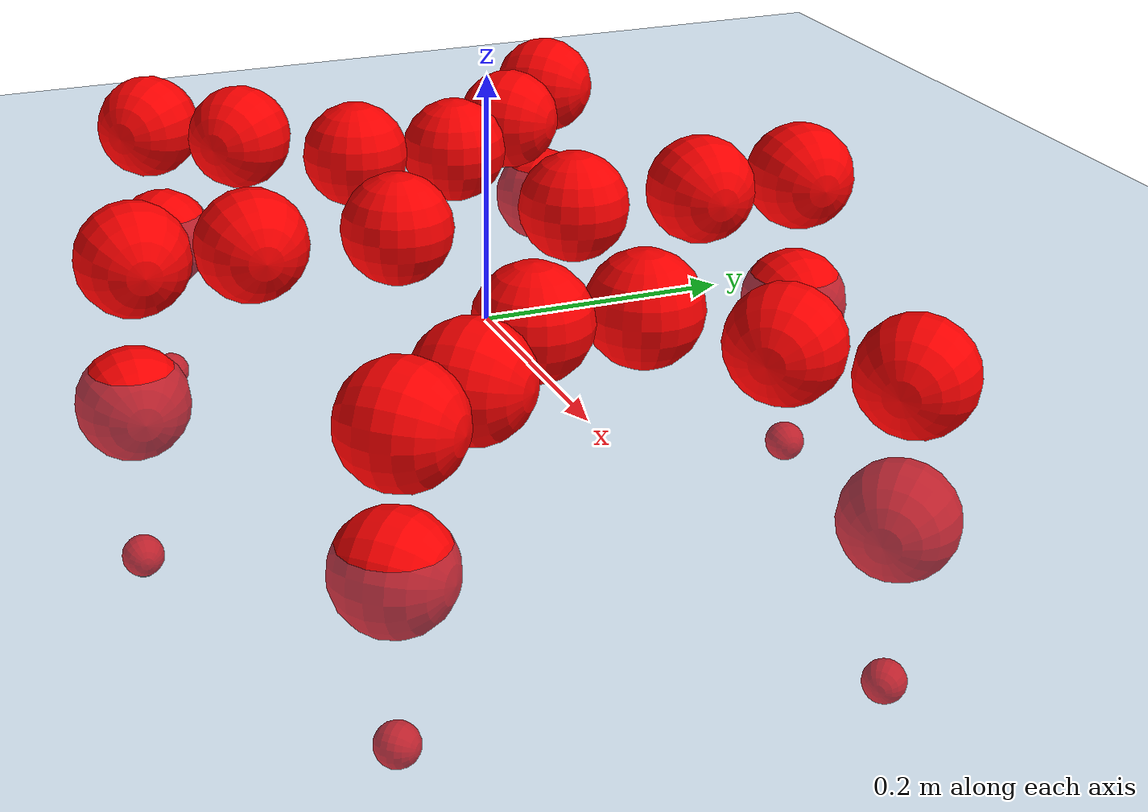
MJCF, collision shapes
<mujoco model="Golem">
  <compiler angle="radian" assetdir="assets" balanceinertia="true" inertiafromgeom="false"/>

  <option timestep="0.005" density="1.2" viscosity="2e-05"/>

  <size nkey="1"/>

  <visual>
    <quality shadowsize="8192"/>
    <map shadowclip="0.5"/>
  </visual>

  <default>
    <default class="/">
      <joint armature="0.01" damping="0.01" frictionloss="0.01"/>
      <geom contype="0" conaffinity="0" group="1" solref="-1000 -80"/>
      <site size="0.01 0.005 0.005" group="5"/>
      <general forcelimited="true" biastype="affine" gainprm="25" biasprm="0 -25 -0.5"/>
      <default class="visual">
        <geom type="mesh" group="2"/>
      </default>
      <default class="collision">
        <geom group="3"/>
      </default>
      <default class="foot">
        <geom size="0.01 0 0" condim="6" group="4" priority="1" solimp="0.015 1 0.01"/>
      </default>
      <default class="reward_collision_sphere">
        <geom group="5" rgba="1 0 0 1"/>
      </default>
    </default>
  </default>

  <asset>
    <texture type="skybox" colorspace="auto" name="//unnamed_texture_0" builtin="gradient" rgb1="0.95 0.95 0.95" rgb2="0.95 0.95 0.95" width="100" height="600"/>
    <texture type="2d" colorspace="auto" name="texplane" builtin="checker" rgb1="0.345 0.575 0.748" rgb2="0.345 0.575 0.748" markrgb="1 1 1" width="512" height="512"/>
    <material name="MatPlane" class="/" texture="texplane" texuniform="true" texrepeat="2 2" specular="0.9"/>
    <mesh name="body" class="/" file="body.stl" scale="0.001 0.001 0.001"/>
    <mesh name="coxa" class="/" file="coxa.stl" scale="0.001 0.001 0.001"/>
    <mesh name="femur" class="/" file="femur.stl" scale="0.001 0.001 0.001"/>
    <mesh name="tibia" class="/" file="tibia.stl" scale="0.001 0.001 0.001"/>
    <mesh name="tarsus" class="/" file="tarsus.stl" scale="0.001 0.001 0.001"/>
  </asset>

  <worldbody>
    <geom name="floor" class="/" size="100 100 0.125" type="plane" group="0" material="MatPlane"/>
    <light name="toplight_shadow" class="/" pos="0 0 5" dir="0.0990148 0.0990148 -0.990148" type="directional" ambient="0.04 0.04 0.04" diffuse="0.55 0.55 0.55" specular="0.12 0.12 0.12"/>
    <light name="toplight_fill" class="/" pos="0 0 5" dir="0.0990148 0.0990148 -0.990148" type="directional" castshadow="false" ambient="0.04 0.04 0.04" diffuse="0.3 0.3 0.3" specular="0.08 0.08 0.08"/>
    <body name="trunk" pos="-1.20237e-05 -0.00188458 0.00311488" quat="0.999997 -0.000601245 -9.67194e-05 -0.00242482">
      <inertial pos="-0.000373513 0.000483909 -0.00484301" quat="0.999998 0.00127969 -0.000454569 -0.00124536" mass="5.50194" diaginertia="0.0271548 0.00449654 0.030963"/>
      <joint name="//unnamed_joint_0" type="free"/>
      <geom name="//unnamed_geom_1" class="/" pos="0 0 0.0802544" quat="1 0 0 0" type="mesh" rgba="0.9 0.9 0.9 1" mesh="body"/>
      <site name="imu" class="/" pos="0.154008 -0.0268199 0.0844026" size="0.0110822"/>
      <camera name="track" class="/" pos="0 -1.69304 0" quat="0.707107 0.707107 0 0" mode="trackcom"/>
      <camera name="ego_camera" class="/" pos="0.15914 0 0.125398" quat="-0.5 -0.5 0.5 0.5"/>
      <body name="coxa_RR" pos="-0.216355 -0.0710015 0.0803499" quat="0.380808 -0.00327507 -0.00185915 -0.924646">
        <inertial pos="-0.00429427 0.000501573 0.00216625" quat="0.999992 -0.000273471 -0.00334201 0.00208247" mass="0.249242" diaginertia="0.0269002 0.00394905 0.0271692"/>
        <joint name="coxa_joint_RR" class="/" pos="0 0 0" axis="-0.000650347 -0.00452543 -0.99999" range="-3.15274 3.1269" armature="0.0124587" damping="0.00459978" frictionloss="0.0110068"/>
        <geom name="//unnamed_geom_2" class="/" type="mesh" rgba="0.2 0.2 0.2 1" mesh="coxa"/>
        <geom name="//unnamed_geom_3" class="reward_collision_sphere" size="0.0443287" pos="-0.0367247 0 0"/>
        <body name="femur_RR" pos="0.0756363 0.00122211 -0.000442556" quat="0.500325 -0.497105 0.500499 0.502058">
          <inertial pos="9.73145e-05 -0.00791939 -0.00184688" quat="0.999893 0.00645261 0.00234045 -0.0129047" mass="0.300489" diaginertia="0.0286492 0.00474155 0.0336293"/>
          <joint name="femur_joint_RR" class="/" pos="0 0 0" axis="-0.00669692 0.00521701 -0.999964" stiffness="0.00497408" range="-3.13199 3.1321" armature="0.00823615" damping="0.0142002" frictionloss="0.0109983"/>
          <geom name="//unnamed_geom_4" class="/" type="mesh" rgba="0.9 0.9 0.9 1" mesh="femur"/>
          <geom name="//unnamed_geom_5" class="reward_collision_sphere" size="0.0443287"/>
          <body name="tibia_RR" pos="0.00304711 -0.0926573 0.000490166" quat="-0.000247157 1 -3.67533e-05 -0.000620918">
            <inertial pos="-0.000272425 -0.0070345 0.00171803" quat="0.999999 3.4572e-05 -0.00151607 0.000710245" mass="0.279748" diaginertia="0.0281609 0.0044925 0.0316723"/>
            <joint name="tibia_joint_RR" class="/" pos="0 0 0" axis="-0.00631958 0.0323383 0.999457" stiffness="0.021206" range="-3.28064 3.16732" armature="0.0123849" damping="0.0334051" frictionloss="0.00619327"/>
            <geom name="//unnamed_geom_6" class="/" type="mesh" rgba="0.2 0.2 0.2 1" mesh="tibia"/>
            <geom name="//unnamed_geom_7" class="reward_collision_sphere" size="0.0443287"/>
            <body name="tarsus_RR" pos="0.106545 -0.00442854 0.0073129" quat="1 4.77712e-05 0.000775455 -0.000538772">
              <inertial pos="0.0725746 -0.00150383 -0.00376112" quat="0.499058 0.498035 0.506119 0.496735" mass="0.293982" diaginertia="0.0302916 0.00463286 0.0297381"/>
              <joint name="tarsus_joint_RR" class="/" pos="0 0 0" axis="-0.0152395 -0.00259187 0.999881" stiffness="0.000786729" range="-3.09789 3.09663" armature="0.0109841" damping="0" frictionloss="0.0122385"/>
              <geom name="//unnamed_geom_8" class="/" type="mesh" rgba="0.9 0.9 0.9 1" mesh="tarsus"/>
              <geom name="foot_1" class="foot" size="0.0133526" pos="0.137105 0 0" quat="0 -0.707107 0 0.707107"/>
              <geom name="//unnamed_geom_10" class="reward_collision_sphere" size="0.0443287"/>
              <geom name="//unnamed_geom_11" class="reward_collision_sphere" size="0.0166233" pos="0.131597 0 0"/>
              <site name="foot_1" class="foot" pos="0.137105 0 0" quat="0 -0.707107 0 0.707107" size="0.0110822"/>
            </body>
          </body>
        </body>
      </body>
      <body name="coxa_RM" pos="-0.00839499 -0.105492 0.0794119" quat="0.707196 -0.000446999 1.43824e-05 -0.707018">
        <inertial pos="0.00216127 -0.000443086 0.00551444" quat="0.99917 -0.0265685 0.00396062 -0.0306352" mass="0.248558" diaginertia="0.0252611 0.00354525 0.0262329"/>
        <joint name="coxa_joint_RM" class="/" pos="0 0 0" axis="-0.0261894 -0.0272337 -0.999286" stiffness="0.00702176" range="-3.13198 3.17495" armature="0.0105591" damping="0.0229224" frictionloss="0.00928504"/>
        <geom name="//unnamed_geom_12" class="/" type="mesh" rgba="0.2 0.2 0.2 1" mesh="coxa"/>
        <geom name="//unnamed_geom_13" class="reward_collision_sphere" size="0.0443287" pos="-0.0367247 0 0"/>
        <body name="femur_RM" pos="0.0794233 0.00170471 0.00216272" quat="0.499113 -0.500957 0.499807 0.500122">
          <inertial pos="0.000797205 -0.00402561 0.000725748" quat="0.999955 -0.00776797 0.00186239 -0.00517256" mass="0.265242" diaginertia="0.0293833 0.00425522 0.0315126"/>
          <joint name="femur_joint_RM" class="/" pos="0 0 0" axis="-0.00373308 0.00144126 -0.999992" stiffness="0.0242112" range="-3.24071 3.10836" armature="0.0089261" damping="0.00978515" frictionloss="0.00763884"/>
          <geom name="//unnamed_geom_14" class="/" type="mesh" rgba="0.9 0.9 0.9 1" mesh="femur"/>
          <geom name="//unnamed_geom_15" class="reward_collision_sphere" size="0.0443287"/>
          <body name="tibia_RM" pos="-0.00122684 -0.0905111 0.000432174" quat="-0.000898249 0.999999 0.000639282 0.000664677">
            <inertial pos="0.00236409 0.000138187 -0.00453219" quat="0.999966 -0.00501345 0.00209016 0.00614631" mass="0.249455" diaginertia="0.0270031 0.00434323 0.031714"/>
            <joint name="tibia_joint_RM" class="/" pos="0 0 0" axis="0.00400708 -0.0339865 0.999414" range="-3.15158 3.06776" armature="0.0150936" damping="0.0146082" frictionloss="0.00725569"/>
            <geom name="//unnamed_geom_16" class="/" type="mesh" rgba="0.2 0.2 0.2 1" mesh="tibia"/>
            <geom name="//unnamed_geom_17" class="reward_collision_sphere" size="0.0443287"/>
            <body name="tarsus_RM" pos="0.116611 0.00649879 0.00145056" quat="0.999998 -0.000173732 0.00032705 0.0018811">
              <inertial pos="0.0747149 -0.00122714 0.00122588" quat="0.498202 0.504699 0.500889 0.496169" mass="0.235186" diaginertia="0.0245162 0.00397714 0.0285083"/>
              <joint name="tarsus_joint_RM" class="/" pos="0 0 0" axis="0.0019101 0.000613889 0.999998" range="-3.14151 3.10779" armature="0.011699" damping="0" frictionloss="0.0118199"/>
              <geom name="//unnamed_geom_18" class="/" type="mesh" rgba="0.9 0.9 0.9 1" mesh="tarsus"/>
              <geom name="foot_2" class="foot" size="0.01221" pos="0.137105 0 0" quat="0 -0.707107 0 0.707107"/>
              <geom name="//unnamed_geom_20" class="reward_collision_sphere" size="0.0443287"/>
              <geom name="//unnamed_geom_21" class="reward_collision_sphere" size="0.0166233" pos="0.131597 0 0"/>
              <site name="foot_2" class="foot" pos="0.137105 0 0" quat="0 -0.707107 0 0.707107" size="0.0110822"/>
            </body>
          </body>
        </body>
      </body>
      <body name="coxa_RF" pos="0.217696 -0.0622739 0.0754275" quat="0.923812 0.000163433 -0.000151189 -0.382846">
        <inertial pos="0.00722879 0.00250652 0.00448242" quat="0.999899 -0.00404017 0.013134 0.00369009" mass="0.264974" diaginertia="0.0243057 0.00395269 0.0267921"/>
        <joint name="coxa_joint_RF" class="/" pos="0 0 0" axis="-0.00873796 0.00122726 -0.999961" stiffness="0.0258988" range="-3.0944 3.19772" armature="0.0101491" damping="0" frictionloss="0.00754666"/>
        <geom name="//unnamed_geom_22" class="/" type="mesh" rgba="0.2 0.2 0.2 1" mesh="coxa"/>
        <geom name="//unnamed_geom_23" class="reward_collision_sphere" size="0.0443287" pos="-0.0367247 0 0"/>
        <body name="femur_RF" pos="0.0659162 0.000600864 -0.00273808" quat="0.499328 -0.498387 0.501754 0.500525">
          <inertial pos="0.00203514 0.00120566 -0.00110943" quat="0.999951 0.00570251 -0.00330555 -0.00736807" mass="0.267062" diaginertia="0.0289183 0.0043832 0.0322182"/>
          <joint name="femur_joint_RF" class="/" pos="0 0 0" axis="-0.0002153 0.00102706 -0.999999" range="-3.16144 3.13063" armature="0.0118463" damping="0.0162375" frictionloss="0.0122537"/>
          <geom name="//unnamed_geom_24" class="/" type="mesh" rgba="0.9 0.9 0.9 1" mesh="femur"/>
          <geom name="//unnamed_geom_25" class="reward_collision_sphere" size="0.0443287"/>
          <body name="tibia_RF" pos="-0.00894259 -0.0936231 -0.00522821" quat="-7.2289e-06 1 -0.000101135 -3.44836e-05">
            <inertial pos="-0.000738262 0.00665063 0.00486727" quat="0.999516 -0.0217113 -0.0114028 0.0191538" mass="0.298566" diaginertia="0.0304736 0.00472618 0.0310207"/>
            <joint name="tibia_joint_RF" class="/" pos="0 0 0" axis="0.0282472 0.0131799 0.999514" stiffness="0.0452686" range="-3.11002 3.17145" armature="0.0122084" damping="0.0384392" frictionloss="0.0124861"/>
            <geom name="//unnamed_geom_26" class="/" type="mesh" rgba="0.2 0.2 0.2 1" mesh="tibia"/>
            <geom name="//unnamed_geom_27" class="reward_collision_sphere" size="0.0443287"/>
            <body name="tarsus_RF" pos="0.106891 -0.000495923 0.00760631" quat="1 6.33345e-06 -3.01048e-05 1.93536e-05">
              <inertial pos="0.0749514 0.00182652 -0.00240651" quat="0.500024 0.49999 0.499992 0.499993" mass="0.283302" diaginertia="0.0282996 0.00470731 0.0322509"/>
              <joint name="tarsus_joint_RF" class="/" pos="0 0 0" axis="0.0375 -0.0171313 0.99915" range="-3.17992 3.10857" armature="0.0110337" damping="0.0102367" frictionloss="0.0098616"/>
              <geom name="//unnamed_geom_28" class="/" type="mesh" rgba="0.9 0.9 0.9 1" mesh="tarsus"/>
              <geom name="foot_3" class="foot" size="0.010564" pos="0.137105 0 0" quat="0 -0.707107 0 0.707107"/>
              <geom name="//unnamed_geom_30" class="reward_collision_sphere" size="0.0443287"/>
              <geom name="//unnamed_geom_31" class="reward_collision_sphere" size="0.0166233" pos="0.131597 0 0"/>
              <site name="foot_3" class="foot" pos="0.137105 0 0" quat="0 -0.707107 0 0.707107" size="0.0110822"/>
            </body>
          </body>
        </body>
      </body>
      <body name="coxa_LR" pos="-0.218672 0.0705517 0.0731548" quat="0.382062 0.00114874 -0.00253335 0.924133">
        <inertial pos="0.00154116 -0.00510081 0.00572641" quat="0.999968 0.000167794 -0.00529873 0.00596016" mass="0.270998" diaginertia="0.027911 0.004629 0.0317909"/>
        <joint name="coxa_joint_LR" class="/" pos="0 0 0" axis="-0.00569892 -0.0211473 -0.99976" range="-3.11812 3.00896" armature="0.0109617" damping="0.0203371" frictionloss="0.00890525"/>
        <geom name="//unnamed_geom_32" class="/" type="mesh" rgba="0.2 0.2 0.2 1" mesh="coxa"/>
        <geom name="//unnamed_geom_33" class="reward_collision_sphere" size="0.0443287" pos="-0.0367247 0 0"/>
        <body name="femur_LR" pos="0.0746279 -0.00257762 -0.00436833" quat="0.49989 -0.500099 0.499875 0.500135">
          <inertial pos="0.00213347 -0.00386797 0.000299069" quat="0.999331 -0.0164452 -0.0289981 0.0150625" mass="0.271736" diaginertia="0.0255867 0.00425131 0.0317277"/>
          <joint name="femur_joint_LR" class="/" pos="0 0 0" axis="-0.0400184 0.0234345 0.998924" range="-3.11265 3.133" armature="0.00660991" damping="0.00576662" frictionloss="0.0118488"/>
          <geom name="//unnamed_geom_34" class="/" type="mesh" rgba="0.9 0.9 0.9 1" mesh="femur"/>
          <geom name="//unnamed_geom_35" class="reward_collision_sphere" size="0.0443287"/>
          <body name="tibia_LR" pos="-0.00561533 -0.0918563 0.00406625" quat="2.59462e-05 1 -3.34435e-05 -5.00898e-05">
            <inertial pos="0.00170286 0.000158555 -0.00472961" quat="0.999834 -0.00892796 0.000777325 -0.0158612" mass="0.255085" diaginertia="0.0285272 0.0043598 0.0317673"/>
            <joint name="tibia_joint_LR" class="/" pos="0 0 0" axis="-0.00416112 -0.00834658 -0.999957" stiffness="0.00665399" range="-3.28647 3.05858" armature="0.0139956" damping="0.0166325" frictionloss="0.0110659"/>
            <geom name="//unnamed_geom_36" class="/" type="mesh" rgba="0.2 0.2 0.2 1" mesh="tibia"/>
            <geom name="//unnamed_geom_37" class="reward_collision_sphere" size="0.0443287"/>
            <body name="tarsus_LR" pos="0.109755 0.0022174 -0.00163161" quat="1 -5.28424e-06 -0.000170223 -0.000173498">
              <inertial pos="0.0726662 0.00595054 0.00179056" quat="0.498664 0.500888 0.499258 0.501186" mass="0.293993" diaginertia="0.027303 0.00386013 0.0301751"/>
              <joint name="tarsus_joint_LR" class="/" pos="0 0 0" axis="-2.49352e-06 -0.00329261 -0.999995" range="-3.17068 3.08552" armature="0.0106278" damping="0.0174285" frictionloss="0.0124768"/>
              <geom name="//unnamed_geom_38" class="/" type="mesh" rgba="0.9 0.9 0.9 1" mesh="tarsus"/>
              <geom name="foot_4" class="foot" size="0.0100521" pos="0.137105 0 0" quat="0.707107 0 -0.707107 0"/>
              <geom name="//unnamed_geom_40" class="reward_collision_sphere" size="0.0443287"/>
              <geom name="//unnamed_geom_41" class="reward_collision_sphere" size="0.0166233" pos="0.131597 0 0"/>
              <site name="foot_4" class="foot" pos="0.137105 0 0" quat="0.707107 0 -0.707107 0" size="0.0110822"/>
            </body>
          </body>
        </body>
      </body>
      <body name="coxa_LM" pos="-0.00498248 0.113826 0.0806125" quat="0.706699 -0.000253147 -1.12505e-05 0.707514">
        <inertial pos="0.00141876 0.00128269 0.00708376" quat="0.999962 -0.0065109 0.003455 -0.00464402" mass="0.276705" diaginertia="0.0273842 0.00435053 0.0314481"/>
        <joint name="coxa_joint_LM" class="/" pos="0 0 0" axis="-0.00976593 0.0017263 -0.999951" stiffness="0.0116025" range="-3.17616 3.09998" armature="0.0112246" damping="0.0305103" frictionloss="0.0112338"/>
        <geom name="//unnamed_geom_42" class="/" type="mesh" rgba="0.2 0.2 0.2 1" mesh="coxa"/>
        <geom name="//unnamed_geom_43" class="reward_collision_sphere" size="0.0443287" pos="-0.0367247 0 0"/>
        <body name="femur_LM" pos="0.0730043 -0.00218085 0.00132082" quat="0.501001 -0.499581 0.499243 0.500173">
          <inertial pos="0.00405851 -0.00157517 0.0085011" quat="0.999772 -0.0199925 0.00556754 0.00499331" mass="0.282352" diaginertia="0.0277692 0.0045239 0.032121"/>
          <joint name="femur_joint_LM" class="/" pos="0 0 0" axis="0.00446567 0.00964901 0.999943" range="-3.11715 3.30138" armature="0.0124268" damping="0.0355782" frictionloss="0.0140734"/>
          <geom name="//unnamed_geom_44" class="/" type="mesh" rgba="0.9 0.9 0.9 1" mesh="femur"/>
          <geom name="//unnamed_geom_45" class="reward_collision_sphere" size="0.0443287"/>
          <body name="tibia_LM" pos="5.95604e-05 -0.0911973 0.0015551" quat="0.00032624 1 -0.000471428 -0.000430207">
            <inertial pos="-0.00098131 0.00144939 0.00023005" quat="0.999957 9.85865e-05 0.00542183 -0.00748489" mass="0.294266" diaginertia="0.0303928 0.00481786 0.0344437"/>
            <joint name="tibia_joint_LM" class="/" pos="0 0 0" axis="-0.00297462 -0.0266122 -0.999641" stiffness="0.00505787" range="-3.24161 3.17413" armature="0.0060951" damping="0.042879" frictionloss="0.00831588"/>
            <geom name="//unnamed_geom_46" class="/" type="mesh" rgba="0.2 0.2 0.2 1" mesh="tibia"/>
            <geom name="//unnamed_geom_47" class="reward_collision_sphere" size="0.0443287"/>
            <body name="tarsus_LM" pos="0.110427 0.000542258 0.000490384" quat="1 0.000494222 6.1292e-05 -6.62305e-05">
              <inertial pos="0.0744489 0.00418025 0.00119244" quat="0.496213 0.495287 0.50448 0.503947" mass="0.297016" diaginertia="0.0301385 0.00537397 0.0344203"/>
              <joint name="tarsus_joint_LM" class="/" pos="0 0 0" axis="0.00955187 0.00731292 -0.999928" range="-3.12903 3.15033" armature="0.010385" damping="0" frictionloss="0.00666695"/>
              <geom name="//unnamed_geom_48" class="/" type="mesh" rgba="0.9 0.9 0.9 1" mesh="tarsus"/>
              <geom name="foot_5" class="foot" size="0.010161" pos="0.137105 0 0" quat="0.707107 0 -0.707107 0"/>
              <geom name="//unnamed_geom_50" class="reward_collision_sphere" size="0.0443287"/>
              <geom name="//unnamed_geom_51" class="reward_collision_sphere" size="0.0166233" pos="0.131597 0 0"/>
              <site name="foot_5" class="foot" pos="0.137105 0 0" quat="0.707107 0 -0.707107 0" size="0.0110822"/>
            </body>
          </body>
        </body>
      </body>
      <body name="coxa_LF" pos="0.214064 0.0764789 0.0716836" quat="0.923836 0.000109123 -2.53007e-05 0.382789">
        <inertial pos="0.00699787 0.00864373 0.00375866" quat="0.999995 -0.00223344 -0.0023595 -0.000234695" mass="0.283859" diaginertia="0.0291418 0.0050945 0.0310176"/>
        <joint name="coxa_joint_LF" class="/" pos="0 0 0" axis="0.0141754 -0.0318629 -0.999392" stiffness="0.0012695" range="-3.09529 3.13418" armature="0.0113498" damping="0.0134196" frictionloss="0.0135026"/>
        <geom name="//unnamed_geom_52" class="/" type="mesh" rgba="0.2 0.2 0.2 1" mesh="coxa"/>
        <geom name="//unnamed_geom_53" class="reward_collision_sphere" size="0.0443287" pos="-0.0367247 0 0"/>
        <body name="femur_LF" pos="0.0695381 -0.00631041 -0.00594434" quat="0.499624 -0.498518 0.500339 0.501514">
          <inertial pos="-0.000617725 0.0023865 0.000419879" quat="0.999996 -0.00212393 -0.00105199 -0.00117581" mass="0.294266" diaginertia="0.0323024 0.00465182 0.0334449"/>
          <joint name="femur_joint_LF" class="/" pos="0 0 0" axis="0.0319899 -0.00866177 0.999451" stiffness="0.0077307" range="-3.11363 3.04641" armature="0.0120529" damping="0.013403" frictionloss="0.0103195"/>
          <geom name="//unnamed_geom_54" class="/" type="mesh" rgba="0.9 0.9 0.9 1" mesh="femur"/>
          <geom name="//unnamed_geom_55" class="reward_collision_sphere" size="0.0443287"/>
          <body name="tibia_LF" pos="0.00764561 -0.0924892 0.00225057" quat="-0.000149945 1 0.000470123 0.000762076">
            <inertial pos="-0.00270588 -0.00632646 0.00180655" quat="0.999944 -0.00157571 0.00351501 -0.00981423" mass="0.258628" diaginertia="0.028287 0.00418998 0.0315175"/>
            <joint name="tibia_joint_LF" class="/" pos="0 0 0" axis="-0.0141027 -0.00744063 -0.999873" stiffness="0.040519" range="-3.09694 3.23343" armature="0.0111084" damping="0.031354" frictionloss="0.011556"/>
            <geom name="//unnamed_geom_56" class="/" type="mesh" rgba="0.2 0.2 0.2 1" mesh="tibia"/>
            <geom name="//unnamed_geom_57" class="reward_collision_sphere" size="0.0443287"/>
            <body name="tarsus_LF" pos="0.109082 -0.00263429 0.00431042" quat="1 1.57215e-05 4.26933e-05 2.90848e-05">
              <inertial pos="0.0822619 0.0016767 -0.000970726" quat="0.478677 0.522402 0.521473 0.475427" mass="0.275804" diaginertia="0.0283765 0.00439934 0.0303472"/>
              <joint name="tarsus_joint_LF" class="/" pos="0 0 0" axis="0.0324611 0.0333176 -0.998918" stiffness="0.00358565" range="-3.16832 3.21641" armature="0.0110673" damping="0.0311851" frictionloss="0.011727"/>
              <geom name="//unnamed_geom_58" class="/" type="mesh" rgba="0.9 0.9 0.9 1" mesh="tarsus"/>
              <geom name="foot_6" class="foot" size="0.00997735" pos="0.137105 0 0" quat="0.707107 0 -0.707107 0"/>
              <geom name="//unnamed_geom_60" class="reward_collision_sphere" size="0.0443287"/>
              <geom name="//unnamed_geom_61" class="reward_collision_sphere" size="0.0166233" pos="0.131597 0 0"/>
              <site name="foot_6" class="foot" pos="0.137105 0 0" quat="0.707107 0 -0.707107 0" size="0.0110822"/>
            </body>
          </body>
        </body>
      </body>
    </body>
  </worldbody>

  <contact>
    <pair class="/" geom1="floor" geom2="foot_1" name="//unnamed_contact_0"/>
    <pair class="/" geom1="floor" geom2="foot_2" name="//unnamed_contact_1"/>
    <pair class="/" geom1="floor" geom2="foot_3" name="//unnamed_contact_2"/>
    <pair class="/" geom1="floor" geom2="foot_4" name="//unnamed_contact_3"/>
    <pair class="/" geom1="floor" geom2="foot_5" name="//unnamed_contact_4"/>
    <pair class="/" geom1="floor" geom2="foot_6" name="//unnamed_contact_5"/>
  </contact>

  <actuator>
    <general name="coxa_joint_RR" class="/" joint="coxa_joint_RR" forcerange="-8.3012 8.3012" gainprm="25.7732" biasprm="0 -25.7732 -0.548504"/>
    <general name="femur_joint_RR" class="/" joint="femur_joint_RR" forcerange="-8.36757 8.36757" gainprm="25.7732" biasprm="0 -25.7732 -0.548504"/>
    <general name="tibia_joint_RR" class="/" joint="tibia_joint_RR" forcerange="-8.06715 8.06715" gainprm="25.7732" biasprm="0 -25.7732 -0.548504"/>
    <general name="tarsus_joint_RR" class="/" joint="tarsus_joint_RR" forcerange="-6.57499 6.57499" gainprm="25.7732" biasprm="0 -25.7732 -0.548504"/>
    <general name="coxa_joint_RM" class="/" joint="coxa_joint_RM" forcerange="-8.2018 8.2018" gainprm="25.7732" biasprm="0 -25.7732 -0.548504"/>
    <general name="femur_joint_RM" class="/" joint="femur_joint_RM" forcerange="-6.54453 6.54453" gainprm="25.7732" biasprm="0 -25.7732 -0.548504"/>
    <general name="tibia_joint_RM" class="/" joint="tibia_joint_RM" forcerange="-8.2939 8.2939" gainprm="25.7732" biasprm="0 -25.7732 -0.548504"/>
    <general name="tarsus_joint_RM" class="/" joint="tarsus_joint_RM" forcerange="-7.87132 7.87132" gainprm="25.7732" biasprm="0 -25.7732 -0.548504"/>
    <general name="coxa_joint_RF" class="/" joint="coxa_joint_RF" forcerange="-9.59591 9.59591" gainprm="25.7732" biasprm="0 -25.7732 -0.548504"/>
    <general name="femur_joint_RF" class="/" joint="femur_joint_RF" forcerange="-8.71062 8.71062" gainprm="25.7732" biasprm="0 -25.7732 -0.548504"/>
    <general name="tibia_joint_RF" class="/" joint="tibia_joint_RF" forcerange="-8.11525 8.11525" gainprm="25.7732" biasprm="0 -25.7732 -0.548504"/>
    <general name="tarsus_joint_RF" class="/" joint="tarsus_joint_RF" forcerange="-8.66857 8.66857" gainprm="25.7732" biasprm="0 -25.7732 -0.548504"/>
    <general name="coxa_joint_LR" class="/" joint="coxa_joint_LR" forcerange="-8.24673 8.24673" gainprm="25.7732" biasprm="0 -25.7732 -0.548504"/>
    <general name="femur_joint_LR" class="/" joint="femur_joint_LR" forcerange="-8.25253 8.25253" gainprm="25.7732" biasprm="0 -25.7732 -0.548504"/>
    <general name="tibia_joint_LR" class="/" joint="tibia_joint_LR" forcerange="-7.43664 7.43664" gainprm="25.7732" biasprm="0 -25.7732 -0.548504"/>
    <general name="tarsus_joint_LR" class="/" joint="tarsus_joint_LR" forcerange="-8.6619 8.6619" gainprm="25.7732" biasprm="0 -25.7732 -0.548504"/>
    <general name="coxa_joint_LM" class="/" joint="coxa_joint_LM" forcerange="-7.64459 7.64459" gainprm="25.7732" biasprm="0 -25.7732 -0.548504"/>
    <general name="femur_joint_LM" class="/" joint="femur_joint_LM" forcerange="-7.57304 7.57304" gainprm="25.7732" biasprm="0 -25.7732 -0.548504"/>
    <general name="tibia_joint_LM" class="/" joint="tibia_joint_LM" forcerange="-8.09103 8.09103" gainprm="25.7732" biasprm="0 -25.7732 -0.548504"/>
    <general name="tarsus_joint_LM" class="/" joint="tarsus_joint_LM" forcerange="-7.9317 7.9317" gainprm="25.7732" biasprm="0 -25.7732 -0.548504"/>
    <general name="coxa_joint_LF" class="/" joint="coxa_joint_LF" forcerange="-8.63368 8.63368" gainprm="25.7732" biasprm="0 -25.7732 -0.548504"/>
    <general name="femur_joint_LF" class="/" joint="femur_joint_LF" forcerange="-7.88499 7.88499" gainprm="25.7732" biasprm="0 -25.7732 -0.548504"/>
    <general name="tibia_joint_LF" class="/" joint="tibia_joint_LF" forcerange="-8.15806 8.15806" gainprm="25.7732" biasprm="0 -25.7732 -0.548504"/>
    <general name="tarsus_joint_LF" class="/" joint="tarsus_joint_LF" forcerange="-7.97091 7.97091" gainprm="25.7732" biasprm="0 -25.7732 -0.548504"/>
  </actuator>

  <sensor>
    <gyro site="imu" name="imu_angular_velocity"/>
    <velocimeter site="imu" name="imu_linear_velocity"/>
    <framelinvel objtype="site" objname="foot_1" name="foot_1_global_linear_velocity"/>
    <framelinvel objtype="site" objname="foot_2" name="foot_2_global_linear_velocity"/>
    <framelinvel objtype="site" objname="foot_3" name="foot_3_global_linear_velocity"/>
    <framelinvel objtype="site" objname="foot_4" name="foot_4_global_linear_velocity"/>
    <framelinvel objtype="site" objname="foot_5" name="foot_5_global_linear_velocity"/>
    <framelinvel objtype="site" objname="foot_6" name="foot_6_global_linear_velocity"/>
  </sensor>

  <keyframe>
    <key name="home" qpos="0 0 0.1457 1 0 0 0 0 0 0 0 0 0 0 0 0 0 0 0 0 0 0 0 0 0 0 0 0 0 0 0"/>
  </keyframe>
</mujoco>
